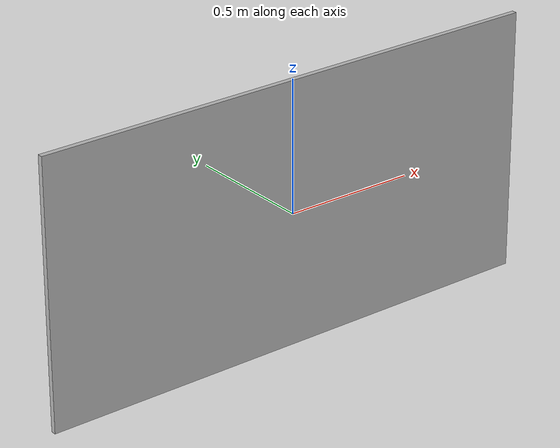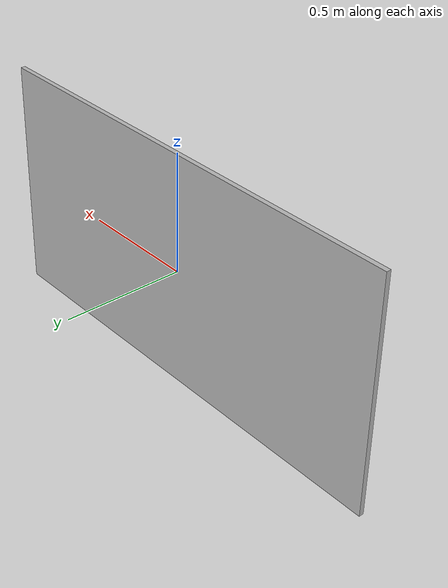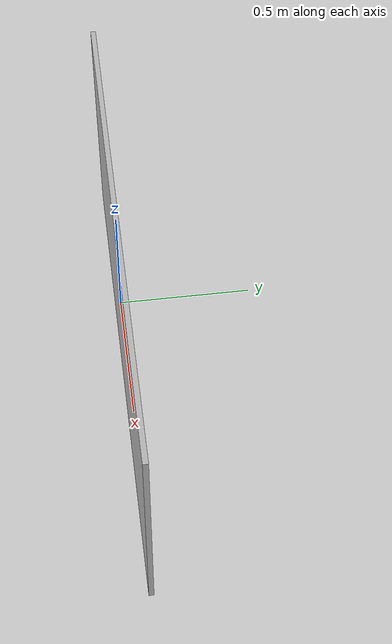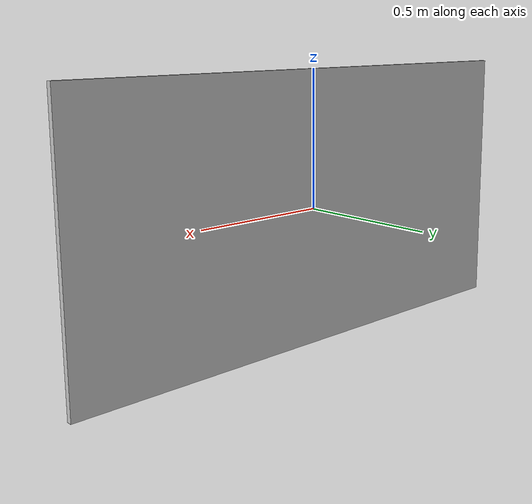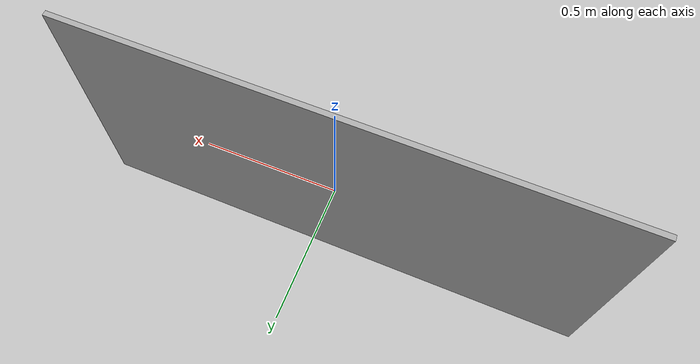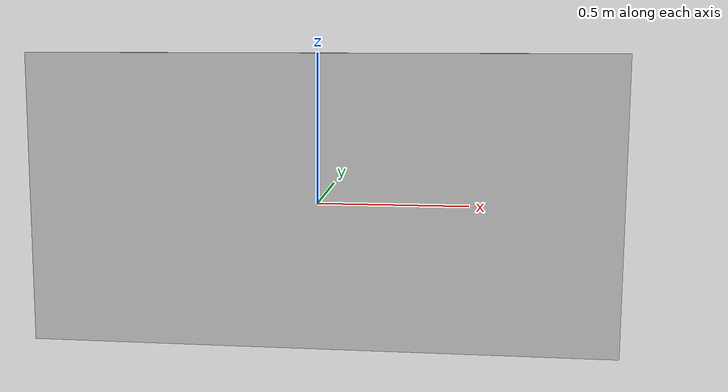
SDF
<?xml version="1.0" encoding="UTF-8" ?>
<sdf version="1.4">
  <!--Generated by blend2world.py-->
    <model name="wall_2x1">
      <pose>0.0 0.0 0.0  0.0 0.0 0.0</pose>
      <static>true</static>
      <link name="body">
        <collision name="collision">
          <geometry>
            <mesh>
              <uri>model://wall_2x1/meshes/wall_2x1.dae</uri>
              <scale>1 1 1</scale>
            </mesh>
          </geometry>
        </collision>
        <visual name="visual">
          <geometry>
            <mesh>
              <uri>model://wall_2x1/meshes/wall_2x1.dae</uri>
              <scale>1 1 1</scale>
            </mesh>
          </geometry>
	  <material>
            <script>
              <uri>model://wall_2x1/textures/chipboard.jpg</uri>
            </script>
          </material>
        </visual>
      </link>
    </model>
</sdf>
